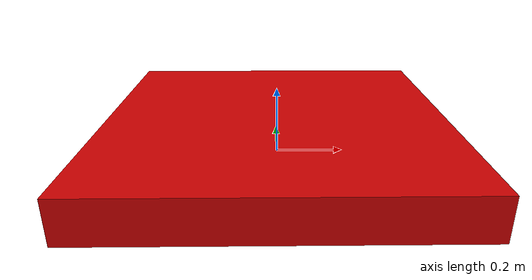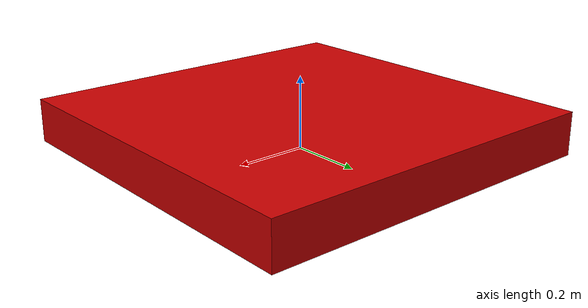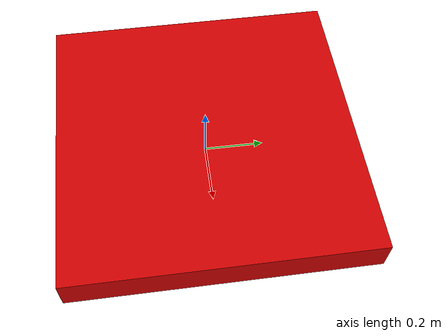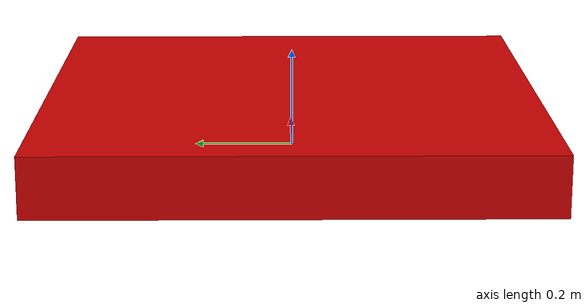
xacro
<?xml version="1.0" encoding="utf-8"?>
<robot name="sim_slider" xmlns:xacro="http://wiki.ros.org/xacro">
  <material name="red">
    <color rgba="0.8 0.0 0.0 1.0"/>
  </material>
  <material name="black">
    <color rgba="0.0 0.0 0.0 1.0"/>
  </material>

  <link name="base_link">
	 <inertial>
     <mass value="0.0001"/>
     <inertia ixx="1.0" ixy="0" ixz="0" iyy="1.0" iyz="0" izz="1.0"/>
     <origin rpy="0 0 0" xyz="0 0 0"/>
    </inertial>
  </link>

	<joint name="slider_joint_x" type="prismatic">
    <parent link="base_link"/>
    <child link="dummy_link1"/>
    <axis xyz="1 0 0"/>
    <origin rpy="0 0 0" xyz="0 0 0.06"/>
    <limit effort="0" velocity="1000.0"/>
  </joint>

	<link name="dummy_link1">
	 <inertial>
     <mass value="0.000"/>
     <inertia ixx="0.0001" ixy="0" ixz="0" iyy="0.0001" iyz="0" izz="0.0001"/>
     <origin rpy="0 0 0" xyz="0 0 0"/>
    </inertial>
  </link>

	<joint name="slider_joint_y" type="prismatic">
    <parent link="dummy_link1"/>
    <child link="dummy_link2"/>
    <axis xyz="0 1 0"/>
    <origin rpy="0 0 0" xyz="0 0 0"/>
    <limit effort="0" velocity="1000.0"/>
  </joint>

	<link name="dummy_link2">
	 <inertial>
     <mass value="0.000"/>
     <inertia ixx="0.0001" ixy="0" ixz="0" iyy="0.0001" iyz="0" izz="0.0001"/>
     <origin rpy="0 0 0" xyz="0 0 0"/>
    </inertial>
  </link>

	<joint name="slider_joint_z" type="prismatic">
    <parent link="dummy_link2"/>
    <child link="dummy_link3"/>
    <axis xyz="0 0 1"/>
    <origin rpy="0 0 0" xyz="0 0 0"/>
    <limit effort="0" velocity="1000.0"/>
  </joint>

	<link name="dummy_link3">
	 <inertial>
     <mass value="0.000"/>
     <inertia ixx="0.0001" ixy="0" ixz="0" iyy="0.0001" iyz="0" izz="0.0001"/>
     <origin rpy="0 0 0" xyz="0 0 0"/>
    </inertial>
  </link>

	<joint name="slider_joint_yaw" type="revolute">
    <parent link="dummy_link3"/>
    <child link="slider_link"/>
    <axis xyz="0 0 1"/>
    <origin rpy="0 0 0" xyz="0 0 0"/>
    <limit effort="0" velocity="1000.0"/>
    <dynamics damping="0" friction="0.0"/>
  </joint>

  <link name="slider_link">
    <inertial>
      <origin rpy="0 0 0" xyz="0 0 0"/>
      <mass value="1"/>
      <inertia ixx="1"  ixy="0"  ixz="0" iyy="1" iyz="0" izz="1" />
    </inertial>

    <visual>
      <origin rpy="0 0 0" xyz="0 0 0"/>
      <geometry>
        <box size="1.0 1.0 0.12"/>
      </geometry>
      <material name="red"/>
    </visual>

    <collision>
      <origin rpy="0 0 0" xyz="0 0 0"/>
      <geometry>
        <box size="1.0 1.0 0.12"/>
      </geometry>
    </collision>
  </link>

</robot>
